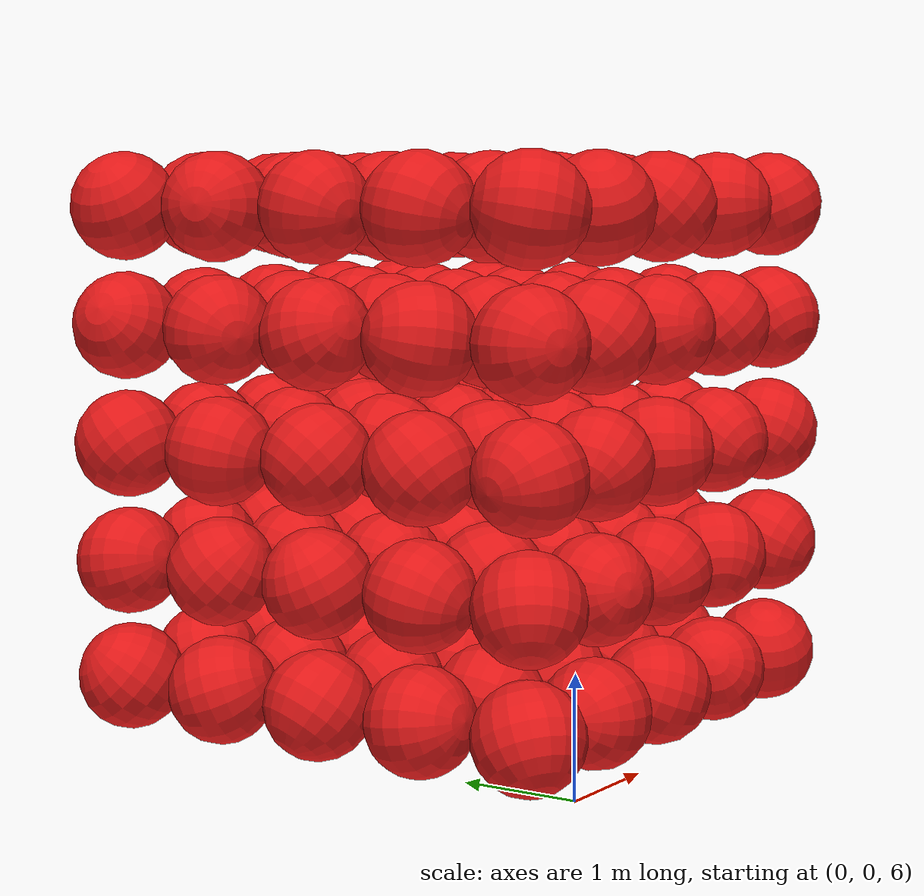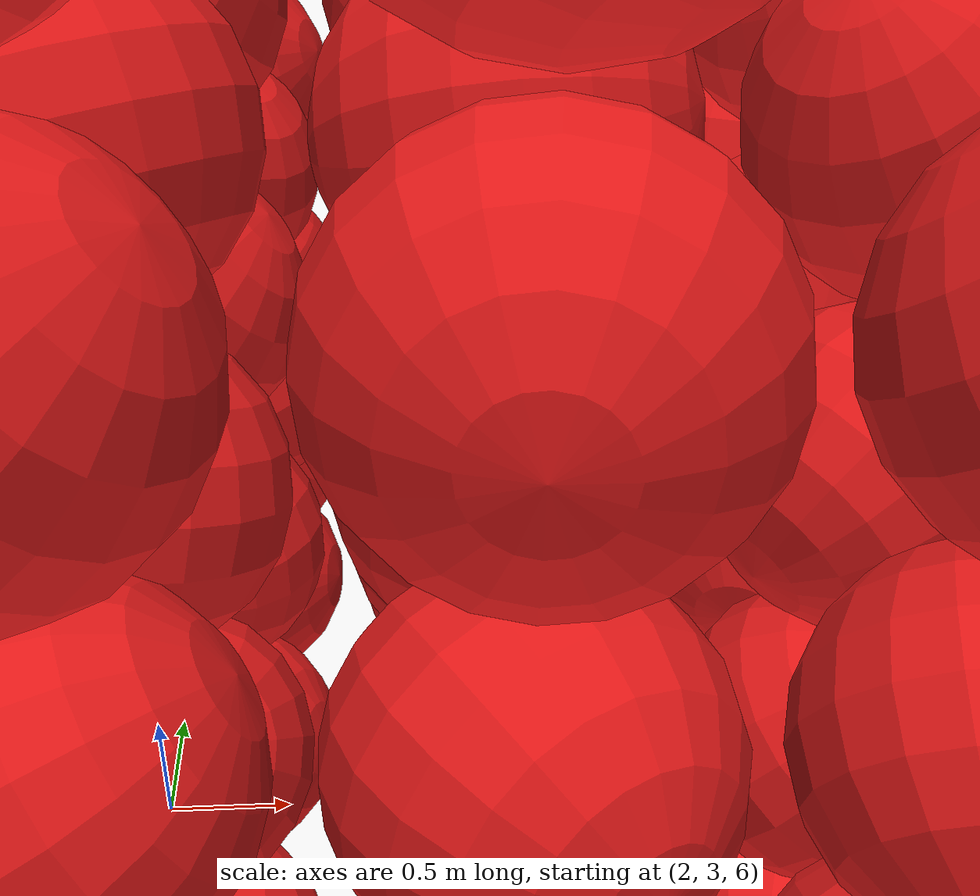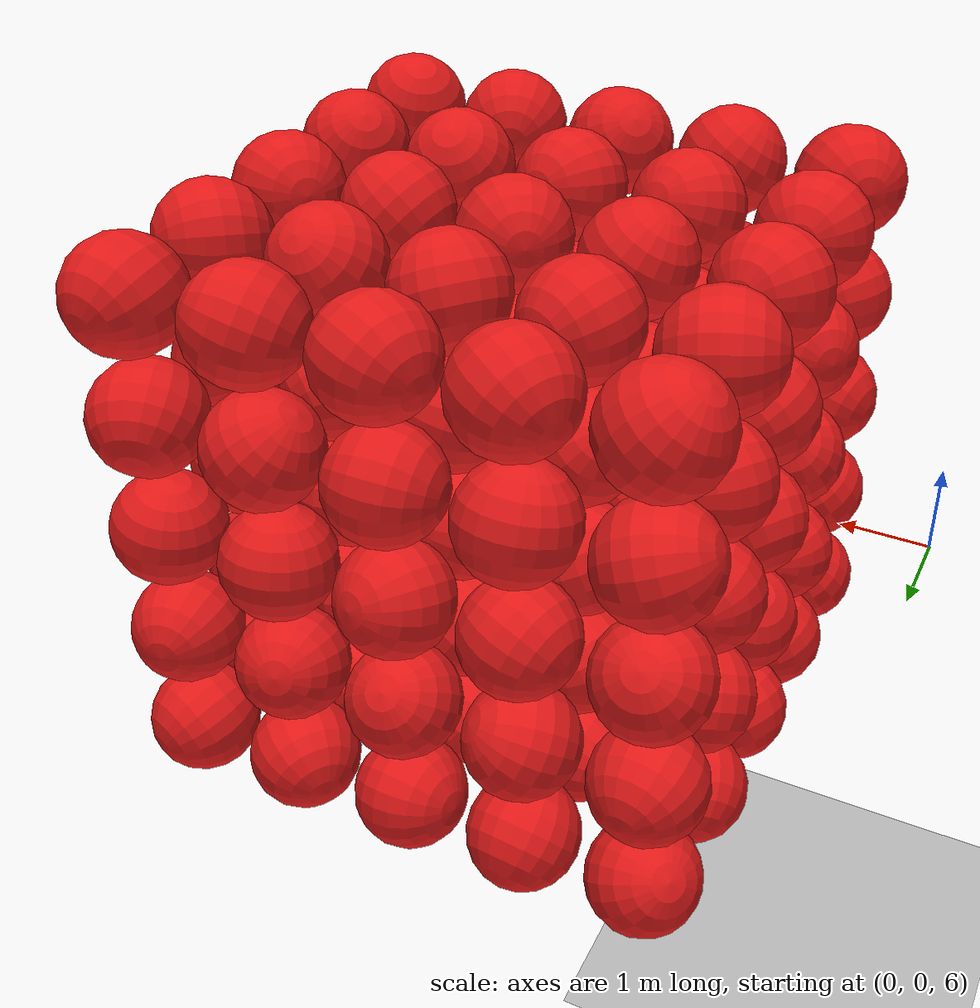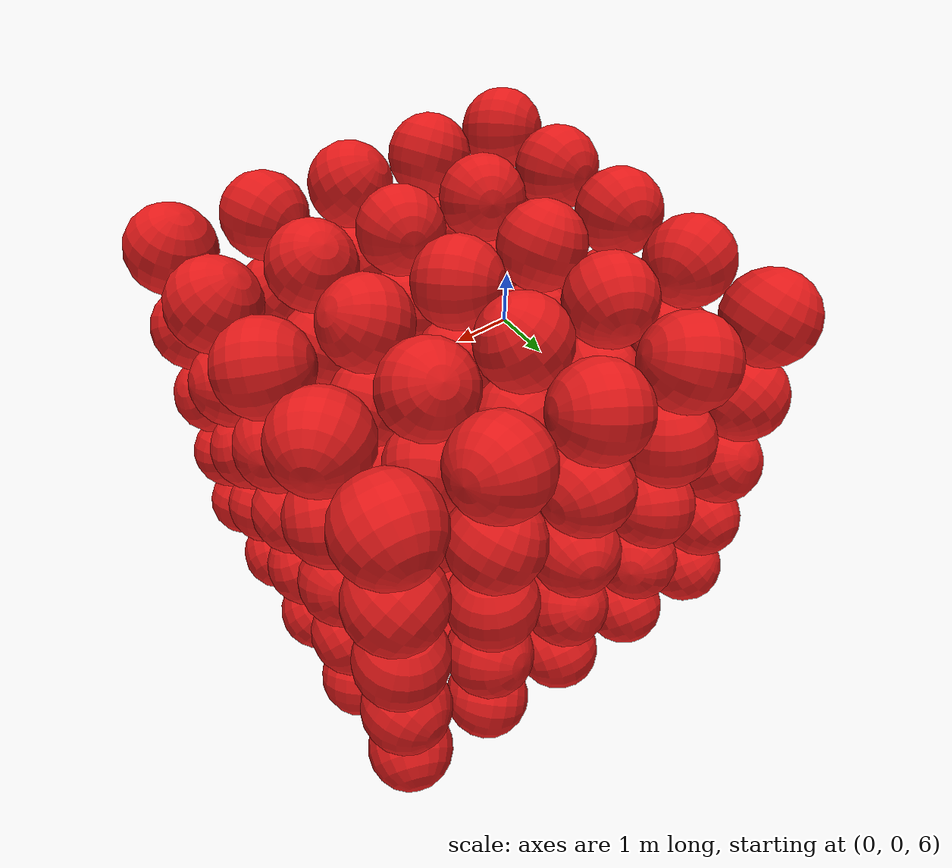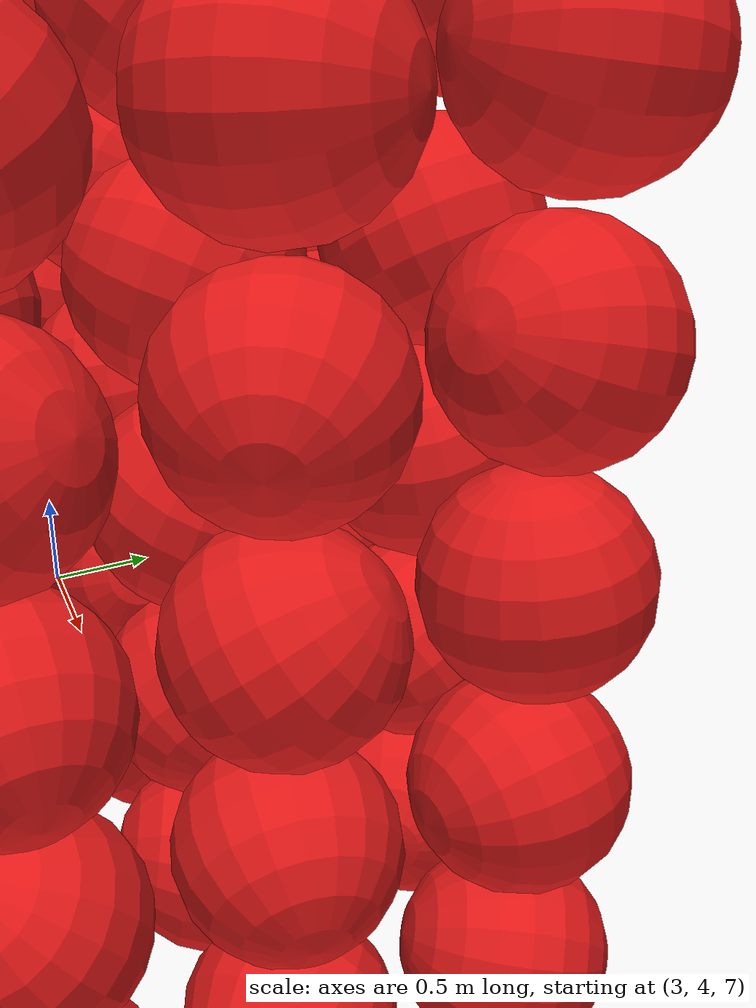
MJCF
<mujoco model="Humanoid and 100 objects">
    <compiler angle="degree"/>

    <option timestep="0.01" iterations="50" solver="PGS" jacobian="sparse" cone="elliptic" tolerance="1e-10"/>

    <size njmax="5000" nconmax="2000" nstack="1000000000"/>

    <default>
        <geom solimp=".9 .9 .01"/>

        <default class="object5">
			<geom type="sphere" material="geom" rgba=".9 .1 .1 1" size="0.500000"/>
        </default>
    </default>

    <asset>
        <texture type="skybox" builtin="gradient" width="128" height="128" rgb1=".4 .6 .8" rgb2="0 0 0"/>
        <texture name="texgeom" type="cube" builtin="flat" mark="cross" width="128" height="128"
            rgb1="0.6 0.6 0.6" rgb2="0.6 0.6 0.6" markrgb="1 1 1"/>
        <texture name="texplane" type="2d" builtin="checker" rgb1=".4 .4 .4" rgb2=".6 .6 .6"
            width="512" height="512"/>
        <material name='geom' texture="texgeom" texuniform="true"/>
        <material name='MatPlane' reflectance='0.3' texture="texplane" texrepeat="1 1" texuniform="true"/>
    </asset>

    <visual>
        <quality shadowsize="4096" offsamples="8"/>
        <map znear="0.1" force="0.05"/>
    </visual>

    <statistic extent="4"/>

    <worldbody>
        <light directional="true" diffuse=".8 .8 .8" pos="0 0 10" dir="0 0 -10"/>

        <geom pos="0 0 0" type="plane" size="3 3 .5" rgba=".7 .7 .7 1" material="MatPlane"/>
		<body pos="1.100559 1.100854 6.100348" quat="-0.093618 -0.773184 -0.560066 0.282395"> <freejoint/> <geom class="object5"/> </body>
		<body pos="1.100331 1.100898 7.200118" quat="0.669344 0.054793 0.283566 0.684519"> <freejoint/> <geom class="object5"/> </body>
		<body pos="1.100288 1.100415 8.300465" quat="0.400506 0.482816 -0.606590 -0.488398"> <freejoint/> <geom class="object5"/> </body>
		<body pos="1.100360 1.100057 9.400522" quat="-0.265939 -0.525445 -0.471532 0.656385"> <freejoint/> <geom class="object5"/> </body>
		<body pos="1.100675 1.100468 10.500912" quat="-0.752731 0.466756 0.449119 0.117592"> <freejoint/> <geom class="object5"/> </body>
		<body pos="1.100184 2.200597 6.100300" quat="-0.490637 -0.385398 0.529613 -0.574677"> <freejoint/> <geom class="object5"/> </body>
		<body pos="1.100242 2.200054 7.200442" quat="-0.602763 0.491892 -0.375667 -0.503581"> <freejoint/> <geom class="object5"/> </body>
		<body pos="1.100307 2.200456 8.300102" quat="0.696093 -0.235933 -0.284757 -0.615389"> <freejoint/> <geom class="object5"/> </body>
		<body pos="1.100298 2.200046 9.400505" quat="0.398955 0.200022 -0.625855 -0.639634"> <freejoint/> <geom class="object5"/> </body>
		<body pos="1.100777 2.200905 10.500534" quat="-0.682893 0.569259 -0.282879 -0.359974"> <freejoint/> <geom class="object5"/> </body>
		<body pos="1.100746 3.300010 6.100048" quat="0.552555 0.340478 0.085894 0.755896"> <freejoint/> <geom class="object5"/> </body>
		<body pos="1.100707 3.300781 7.200288" quat="0.390418 0.114915 -0.209836 -0.889009"> <freejoint/> <geom class="object5"/> </body>
		<body pos="1.100780 3.300338 8.300608" quat="0.404742 -0.662989 -0.624277 0.083111"> <freejoint/> <geom class="object5"/> </body>
		<body pos="1.100485 3.300890 9.400799" quat="0.300547 -0.575426 -0.547783 -0.527722"> <freejoint/> <geom class="object5"/> </body>
		<body pos="1.100798 3.300943 10.500684" quat="-0.529333 0.320440 -0.560596 -0.550324"> <freejoint/> <geom class="object5"/> </body>
		<body pos="1.100641 4.400329 6.100654" quat="0.561416 0.187459 0.540912 -0.597566"> <freejoint/> <geom class="object5"/> </body>
		<body pos="1.100735 4.400971 7.200867" quat="-0.843918 -0.272416 -0.266783 0.377385"> <freejoint/> <geom class="object5"/> </body>
		<body pos="1.100598 4.400789 8.300368" quat="-0.454780 -0.639434 0.420686 -0.455327"> <freejoint/> <geom class="object5"/> </body>
		<body pos="1.100388 4.400552 9.400229" quat="0.301875 -0.033007 -0.740444 0.599604"> <freejoint/> <geom class="object5"/> </body>
		<body pos="1.100101 4.400294 10.500237" quat="0.053504 -0.707965 -0.164096 -0.684833"> <freejoint/> <geom class="object5"/> </body>
		<body pos="1.100112 5.500784 6.100292" quat="0.199659 0.895618 -0.130200 0.375571"> <freejoint/> <geom class="object5"/> </body>
		<body pos="1.100758 5.500433 7.200655" quat="-0.555911 0.617899 -0.445218 -0.333083"> <freejoint/> <geom class="object5"/> </body>
		<body pos="1.100798 5.500488 8.300769" quat="-0.187824 -0.410099 -0.835809 0.312991"> <freejoint/> <geom class="object5"/> </body>
		<body pos="1.100430 5.500452 9.400610" quat="-0.754493 -0.315411 0.467019 0.336378"> <freejoint/> <geom class="object5"/> </body>
		<body pos="1.100125 5.500130 10.500092" quat="-0.867285 -0.135491 0.274140 0.392819"> <freejoint/> <geom class="object5"/> </body>
		<body pos="2.200531 1.100109 6.100632" quat="-0.497997 -0.487592 -0.535204 -0.477294"> <freejoint/> <geom class="object5"/> </body>
		<body pos="2.200168 1.100196 7.200317" quat="-0.319635 -0.491781 -0.433488 0.684159"> <freejoint/> <geom class="object5"/> </body>
		<body pos="2.200703 1.100556 8.300184" quat="-0.417599 -0.612912 0.600074 0.299769"> <freejoint/> <geom class="object5"/> </body>
		<body pos="2.200558 1.100313 9.400166" quat="0.188935 0.752572 -0.508313 -0.373572"> <freejoint/> <geom class="object5"/> </body>
		<body pos="2.200397 1.100074 10.500684" quat="-0.188981 0.934794 -0.189377 0.233627"> <freejoint/> <geom class="object5"/> </body>
		<body pos="2.200154 2.200381 6.100161" quat="0.505194 0.726362 -0.292069 0.363142"> <freejoint/> <geom class="object5"/> </body>
		<body pos="2.200294 2.200531 7.200832" quat="0.346450 -0.585252 -0.713491 -0.168471"> <freejoint/> <geom class="object5"/> </body>
		<body pos="2.200423 2.200360 8.300558" quat="0.528944 -0.165011 -0.154061 -0.818080"> <freejoint/> <geom class="object5"/> </body>
		<body pos="2.200024 2.200290 9.400318" quat="0.236015 0.701696 0.669132 -0.064672"> <freejoint/> <geom class="object5"/> </body>
		<body pos="2.200240 2.200764 10.500759" quat="0.435347 0.440847 -0.712913 0.328454"> <freejoint/> <geom class="object5"/> </body>
		<body pos="2.200463 3.300212 6.100099" quat="0.546117 -0.548507 -0.567815 0.280147"> <freejoint/> <geom class="object5"/> </body>
		<body pos="2.200894 3.300517 7.200703" quat="-0.577671 0.756183 0.068178 0.299724"> <freejoint/> <geom class="object5"/> </body>
		<body pos="2.200037 3.300809 8.300749" quat="-0.901824 0.059467 -0.413539 0.110289"> <freejoint/> <geom class="object5"/> </body>
		<body pos="2.200399 3.300415 9.400181" quat="-0.348437 -0.682968 0.603501 0.218936"> <freejoint/> <geom class="object5"/> </body>
		<body pos="2.200933 3.300164 10.500921" quat="0.748046 0.196480 -0.152231 -0.615344"> <freejoint/> <geom class="object5"/> </body>
		<body pos="2.200752 4.400229 6.100064" quat="0.653633 0.418597 0.526205 0.347345"> <freejoint/> <geom class="object5"/> </body>
		<body pos="2.200419 4.400391 7.200816" quat="-0.313145 0.539494 0.495814 0.604198"> <freejoint/> <geom class="object5"/> </body>
		<body pos="2.200506 4.400636 8.300951" quat="-0.094930 -0.745368 0.621307 0.222245"> <freejoint/> <geom class="object5"/> </body>
		<body pos="2.200355 4.400997 9.400224" quat="0.364419 0.250970 -0.269529 -0.855317"> <freejoint/> <geom class="object5"/> </body>
		<body pos="2.200025 4.400421 10.500184" quat="0.461529 -0.265004 0.698215 0.478811"> <freejoint/> <geom class="object5"/> </body>
		<body pos="2.200571 5.500177 6.100957" quat="-0.409996 0.741767 -0.482589 -0.220891"> <freejoint/> <geom class="object5"/> </body>
		<body pos="2.200088 5.500640 7.200181" quat="-0.822627 0.403536 -0.275859 0.290423"> <freejoint/> <geom class="object5"/> </body>
		<body pos="2.200384 5.500627 8.300022" quat="0.635506 0.465223 0.380538 0.484655"> <freejoint/> <geom class="object5"/> </body>
		<body pos="2.200383 5.500617 9.400575" quat="0.087848 -0.657525 -0.734818 -0.141371"> <freejoint/> <geom class="object5"/> </body>
		<body pos="2.200228 5.500804 10.500986" quat="-0.675628 0.051267 -0.593569 0.434251"> <freejoint/> <geom class="object5"/> </body>
		<body pos="3.300989 1.100067 6.100939" quat="-0.817210 0.311805 0.481240 0.057900"> <freejoint/> <geom class="object5"/> </body>
		<body pos="3.300885 1.100899 7.200626" quat="-0.501348 -0.390686 -0.440056 -0.634322"> <freejoint/> <geom class="object5"/> </body>
		<body pos="3.300107 1.100616 8.300940" quat="-0.214058 -0.131441 0.712351 0.655331"> <freejoint/> <geom class="object5"/> </body>
		<body pos="3.300677 1.100988 9.400767" quat="-0.407865 0.405570 -0.638981 -0.510747"> <freejoint/> <geom class="object5"/> </body>
		<body pos="3.300680 1.100528 10.500412" quat="0.356359 0.869803 0.290026 0.179823"> <freejoint/> <geom class="object5"/> </body>
		<body pos="3.300584 2.200512 6.100083" quat="0.299456 0.676671 -0.198390 0.642716"> <freejoint/> <geom class="object5"/> </body>
		<body pos="3.300346 2.200887 7.200455" quat="-0.168550 -0.549553 -0.728820 -0.372028"> <freejoint/> <geom class="object5"/> </body>
		<body pos="3.300726 2.200783 8.300694" quat="-0.627701 0.439487 0.540798 0.346958"> <freejoint/> <geom class="object5"/> </body>
		<body pos="3.300043 2.200378 9.400704" quat="0.498500 -0.598867 -0.501611 0.375822"> <freejoint/> <geom class="object5"/> </body>
		<body pos="3.300477 2.200624 10.500236" quat="-0.469501 0.479341 0.388136 0.631784"> <freejoint/> <geom class="object5"/> </body>
		<body pos="3.300108 3.300182 6.100099" quat="-0.015954 -0.478102 0.617029 -0.624851"> <freejoint/> <geom class="object5"/> </body>
		<body pos="3.300044 3.300557 7.200772" quat="-0.377352 -0.644139 -0.323144 -0.581608"> <freejoint/> <geom class="object5"/> </body>
		<body pos="3.300510 3.300906 8.300629" quat="-0.655912 -0.179663 -0.733142 0.002112"> <freejoint/> <geom class="object5"/> </body>
		<body pos="3.300432 3.300998 9.400812" quat="-0.026228 0.721042 -0.662557 -0.201069"> <freejoint/> <geom class="object5"/> </body>
		<body pos="3.300927 3.300917 10.500714" quat="0.194683 -0.257815 0.717332 -0.617304"> <freejoint/> <geom class="object5"/> </body>
		<body pos="3.300731 4.400646 6.100833" quat="-0.218533 0.536724 0.720196 -0.381430"> <freejoint/> <geom class="object5"/> </body>
		<body pos="3.300552 4.400979 7.200549" quat="-0.473520 0.333609 -0.389154 0.716270"> <freejoint/> <geom class="object5"/> </body>
		<body pos="3.300414 4.400492 8.300695" quat="0.725643 -0.264395 0.518525 0.366974"> <freejoint/> <geom class="object5"/> </body>
		<body pos="3.300954 4.400032 9.400357" quat="0.371722 -0.499347 -0.616170 0.482504"> <freejoint/> <geom class="object5"/> </body>
		<body pos="3.300625 4.400591 10.500660" quat="-0.830111 -0.277438 -0.089276 -0.475367"> <freejoint/> <geom class="object5"/> </body>
		<body pos="3.300715 5.500856 6.100282" quat="0.352928 -0.553314 0.514341 -0.552032"> <freejoint/> <geom class="object5"/> </body>
		<body pos="3.300588 5.500366 7.200807" quat="0.009340 -0.025706 0.931466 -0.362800"> <freejoint/> <geom class="object5"/> </body>
		<body pos="3.300449 5.500964 8.300042" quat="0.793033 -0.521123 0.280219 0.144938"> <freejoint/> <geom class="object5"/> </body>
		<body pos="3.300675 5.500361 9.400620" quat="0.365044 -0.564010 -0.488202 0.557040"> <freejoint/> <geom class="object5"/> </body>
		<body pos="3.300651 5.500231 10.500403" quat="-0.709936 -0.434927 -0.454823 -0.316173"> <freejoint/> <geom class="object5"/> </body>
		<body pos="4.400152 1.100348 6.100122" quat="0.539343 -0.569625 0.603768 -0.141774"> <freejoint/> <geom class="object5"/> </body>
		<body pos="4.400047 1.100342 7.200736" quat="0.558415 0.085095 0.352888 0.745923"> <freejoint/> <geom class="object5"/> </body>
		<body pos="4.400055 1.100304 8.300046" quat="-0.527623 0.381464 0.384214 0.654583"> <freejoint/> <geom class="object5"/> </body>
		<body pos="4.400582 1.100071 9.400923" quat="0.491847 -0.350504 0.071497 0.793802"> <freejoint/> <geom class="object5"/> </body>
		<body pos="4.400716 1.100839 10.500433" quat="-0.084842 0.175354 -0.666915 0.719220"> <freejoint/> <geom class="object5"/> </body>
		<body pos="4.400504 2.200647 6.100308" quat="-0.748376 -0.050600 -0.284913 0.596822"> <freejoint/> <geom class="object5"/> </body>
		<body pos="4.400780 2.200669 7.200134" quat="-0.701441 0.087732 -0.292017 0.644213"> <freejoint/> <geom class="object5"/> </body>
		<body pos="4.400981 2.200287 8.300801" quat="0.554242 0.136460 0.537319 0.620873"> <freejoint/> <geom class="object5"/> </body>
		<body pos="4.400549 2.200728 9.400577" quat="-0.949189 -0.107040 0.292883 0.042446"> <freejoint/> <geom class="object5"/> </body>
		<body pos="4.400372 2.200937 10.500830" quat="0.653225 -0.238520 0.174371 0.697137"> <freejoint/> <geom class="object5"/> </body>
		<body pos="4.400934 3.300668 6.100207" quat="0.311861 -0.867466 -0.189068 0.338376"> <freejoint/> <geom class="object5"/> </body>
		<body pos="4.400934 3.300811 7.200485" quat="0.351513 -0.113569 0.645917 0.668081"> <freejoint/> <geom class="object5"/> </body>
		<body pos="4.400864 3.300389 8.300455" quat="-0.372363 0.418095 0.562762 0.608146"> <freejoint/> <geom class="object5"/> </body>
		<body pos="4.400558 3.300599 9.400149" quat="0.625330 -0.077607 -0.460460 0.625233"> <freejoint/> <geom class="object5"/> </body>
		<body pos="4.400763 3.300882 10.500285" quat="0.379957 0.360334 -0.827324 -0.203289"> <freejoint/> <geom class="object5"/> </body>
		<body pos="4.400275 4.400717 6.100283" quat="0.754526 0.621941 -0.209435 -0.003994"> <freejoint/> <geom class="object5"/> </body>
		<body pos="4.400695 4.400834 7.200610" quat="0.258709 -0.602171 -0.150840 0.740073"> <freejoint/> <geom class="object5"/> </body>
		<body pos="4.400884 4.400721 8.300019" quat="0.406506 -0.143020 -0.144622 -0.890720"> <freejoint/> <geom class="object5"/> </body>
		<body pos="4.400815 4.400325 9.400246" quat="-0.731820 -0.578377 0.216604 0.288101"> <freejoint/> <geom class="object5"/> </body>
		<body pos="4.400396 4.400398 10.500515" quat="0.293764 0.840869 0.414636 -0.186332"> <freejoint/> <geom class="object5"/> </body>
		<body pos="4.400832 5.500134 6.100060" quat="-0.696778 -0.563287 -0.294597 -0.332295"> <freejoint/> <geom class="object5"/> </body>
		<body pos="4.400012 5.500540 7.200095" quat="-0.501841 0.186180 0.510125 0.673250"> <freejoint/> <geom class="object5"/> </body>
		<body pos="4.400571 5.500997 8.300554" quat="0.083991 -0.919956 -0.380322 -0.044519"> <freejoint/> <geom class="object5"/> </body>
		<body pos="4.400071 5.500888 9.400065" quat="-0.173838 0.889769 -0.287297 0.309116"> <freejoint/> <geom class="object5"/> </body>
		<body pos="4.400819 5.500886 10.500931" quat="-0.545845 -0.426165 0.702336 0.164808"> <freejoint/> <geom class="object5"/> </body>
		<body pos="5.500504 1.100613 6.100819" quat="0.102338 -0.956092 -0.147964 -0.231346"> <freejoint/> <geom class="object5"/> </body>
		<body pos="5.500966 1.100620 7.200695" quat="0.801705 -0.557514 0.061869 0.206447"> <freejoint/> <geom class="object5"/> </body>
		<body pos="5.500156 1.100562 8.300695" quat="-0.168009 0.768194 0.528593 -0.319752"> <freejoint/> <geom class="object5"/> </body>
		<body pos="5.500454 1.100386 9.400776" quat="0.430964 -0.128260 0.356426 0.819012"> <freejoint/> <geom class="object5"/> </body>
		<body pos="5.500784 1.100706 10.500109" quat="-0.232448 0.191976 -0.085783 -0.949608"> <freejoint/> <geom class="object5"/> </body>
		<body pos="5.500229 2.200834 6.100016" quat="0.624783 -0.724793 0.290381 0.000363"> <freejoint/> <geom class="object5"/> </body>
		<body pos="5.500218 2.200572 7.200122" quat="0.260059 0.151304 -0.674621 -0.674064"> <freejoint/> <geom class="object5"/> </body>
		<body pos="5.500153 2.200020 8.300435" quat="0.655387 0.231580 0.039710 0.717817"> <freejoint/> <geom class="object5"/> </body>
		<body pos="5.500098 2.200908 9.400108" quat="0.027697 -0.581490 0.096747 -0.807305"> <freejoint/> <geom class="object5"/> </body>
		<body pos="5.500767 2.200849 10.500917" quat="0.726889 0.007662 -0.341195 -0.595953"> <freejoint/> <geom class="object5"/> </body>
		<body pos="5.500508 3.300586 6.100763" quat="-0.750802 0.290925 0.030568 -0.592220"> <freejoint/> <geom class="object5"/> </body>
		<body pos="5.500939 3.300590 7.200441" quat="0.760906 0.268456 -0.082741 0.584899"> <freejoint/> <geom class="object5"/> </body>
		<body pos="5.500533 3.300554 8.300680" quat="-0.279095 -0.547870 0.165854 0.770998"> <freejoint/> <geom class="object5"/> </body>
		<body pos="5.500407 3.300113 9.400444" quat="-0.484525 -0.239123 0.808360 -0.233687"> <freejoint/> <geom class="object5"/> </body>
		<body pos="5.500390 3.300360 10.500140" quat="-0.443781 -0.764429 -0.130621 -0.449049"> <freejoint/> <geom class="object5"/> </body>
		<body pos="5.500298 4.400425 6.100119" quat="-0.011328 0.473970 -0.588829 0.654603"> <freejoint/> <geom class="object5"/> </body>
		<body pos="5.500074 4.400394 7.200003" quat="-0.376246 -0.671745 -0.418673 -0.481571"> <freejoint/> <geom class="object5"/> </body>
		<body pos="5.500268 4.400175 8.300139" quat="0.148836 0.603645 0.661325 -0.419654"> <freejoint/> <geom class="object5"/> </body>
		<body pos="5.500483 4.400376 9.400524" quat="-0.396292 -0.727506 -0.107317 -0.549700"> <freejoint/> <geom class="object5"/> </body>
		<body pos="5.500026 4.400955 10.500431" quat="0.618433 0.351604 -0.660094 0.241230"> <freejoint/> <geom class="object5"/> </body>
		<body pos="5.500706 5.500645 6.100552" quat="-0.570333 0.551061 -0.550263 -0.261271"> <freejoint/> <geom class="object5"/> </body>
		<body pos="5.500891 5.500856 7.200402" quat="-0.295002 0.176105 0.664952 0.663174"> <freejoint/> <geom class="object5"/> </body>
		<body pos="5.500592 5.500333 8.300853" quat="-0.092739 0.651007 -0.751575 0.052206"> <freejoint/> <geom class="object5"/> </body>
		<body pos="5.500716 5.500179 9.400337" quat="-0.832143 -0.474506 -0.256191 0.129413"> <freejoint/> <geom class="object5"/> </body>
		<body pos="5.500049 5.500553 10.500275" quat="-0.380838 -0.378417 -0.509517 0.672425"> <freejoint/> <geom class="object5"/> </body>

    </worldbody>
</mujoco>
